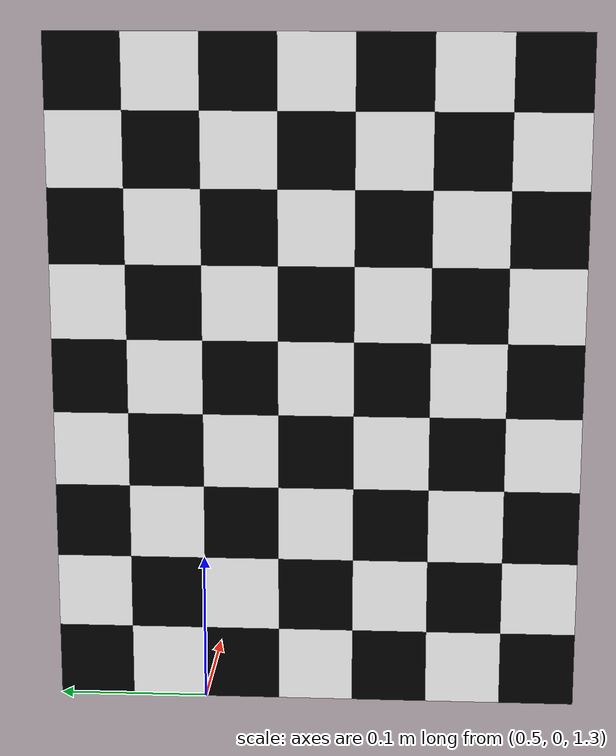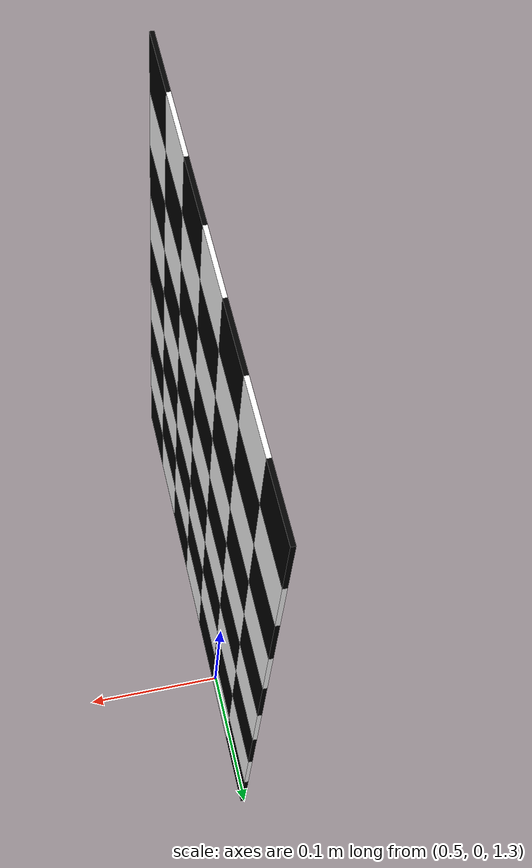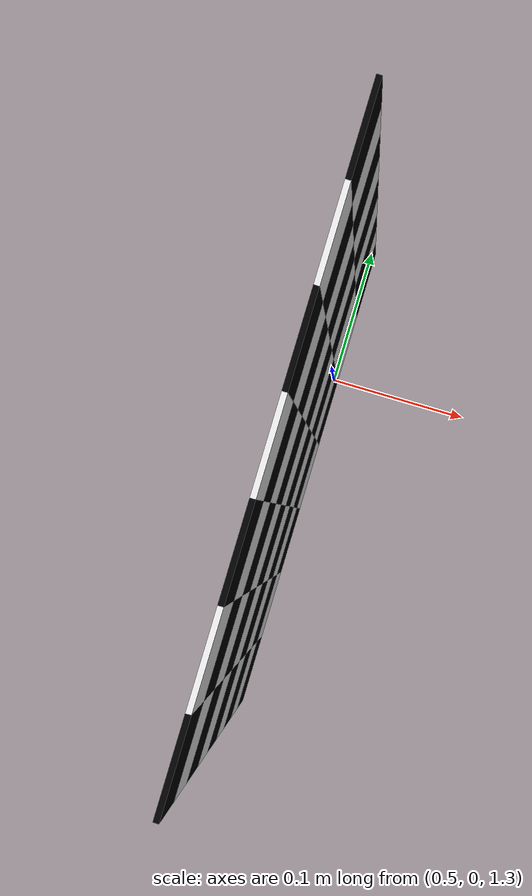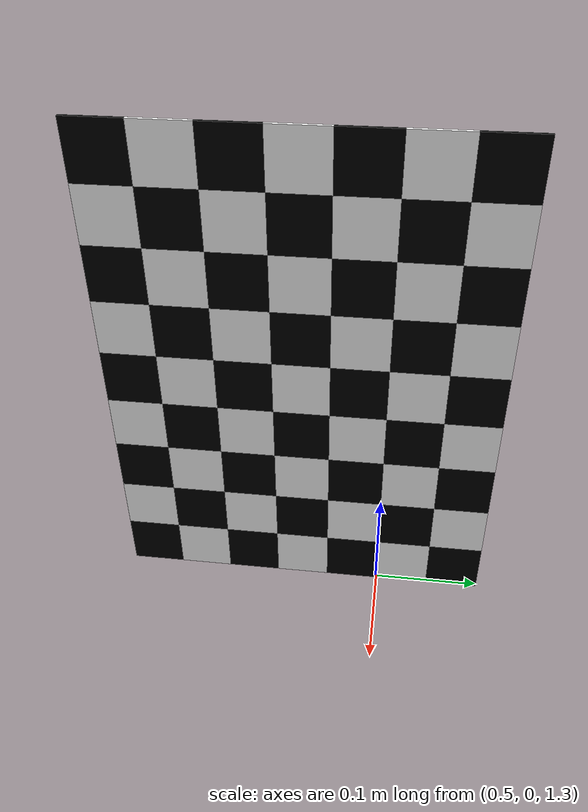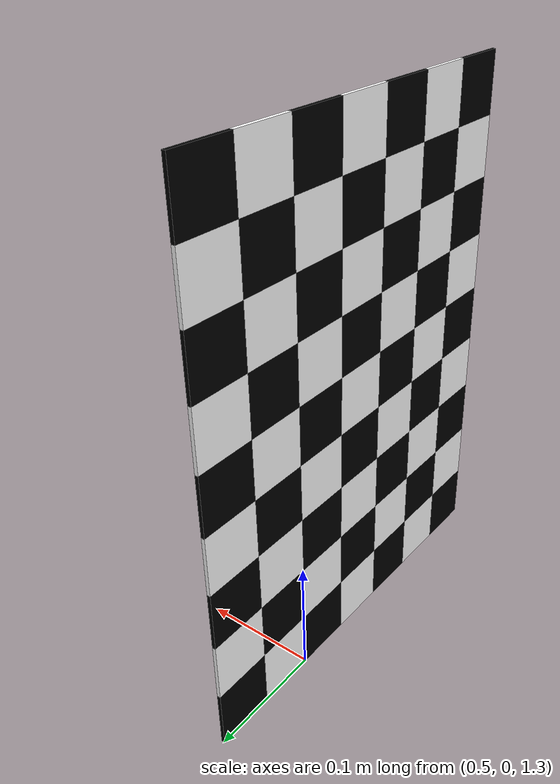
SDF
<sdf version="1.6">
 <world name="default">
  <gravity>0 0 0</gravity>
  <light name="sun" type="directional">
   <pose>0 0 10 0 -0 0</pose>
   <diffuse>0.8 0.8 0.8 1</diffuse>
   <specular>0.2 0.2 0.2 1</specular>
   <attenuation>
    <range>1000</range>
    <constant>0.9</constant>
    <linear>0.01</linear>
    <quadratic>0.001</quadratic>
   </attenuation>
   <direction>-0.5 0.1 -0.9</direction>
  </light>
  <model name="ground_plane">
   <static>1</static>
   <link name="link">
    <collision name="collision">
     <geometry><plane><normal>0 0 1</normal><size>100 100</size></plane></geometry>
     <surface><friction><ode><mu>100</mu><mu2>50</mu2></ode></friction></surface>
    </collision>
    <visual name="visual">
     <cast_shadows>0</cast_shadows>
     <geometry><plane><normal>0 0 1</normal><size>100 100</size></plane></geometry>
     <material>
      <script><uri>file://media/materials/scripts/gazebo.material</uri><name>Gazebo/Grey</name></script>
     </material>
    </visual>
   </link>
  </model>
  <gravity>0 0 -9.8</gravity>
  <magnetic_field>6e-06 2.3e-05 -4.2e-05</magnetic_field>
  <atmosphere type="adiabatic"/>
  <physics name="default_physics" default="0" type="ode">
   <max_step_size>0.001</max_step_size>
   <real_time_factor>1</real_time_factor>
   <real_time_update_rate>1000</real_time_update_rate>
  </physics>
  <scene><ambient>0.4 0.4 0.4 1</ambient><background>0.7 0.7 0.7 1</background><shadows>1</shadows></scene>
  <spherical_coordinates>
   <surface_model>EARTH_WGS84</surface_model>
   <latitude_deg>0</latitude_deg>
   <longitude_deg>0</longitude_deg>
   <elevation>0</elevation>
   <heading_deg>0</heading_deg>
  </spherical_coordinates>
  <light name="light_back" type="point">
   <pose>0 0 10 0 -0 0</pose>
   <diffuse>0.5 0.5 0.5 1</diffuse>
   <specular>0.1 0.1 0.1 1</specular>
   <attenuation>
    <range>20</range>
    <constant>0.5</constant>
    <linear>0.01</linear>
    <quadratic>0.001</quadratic>
   </attenuation>
   <cast_shadows>0</cast_shadows>
   <direction>0 0 -1</direction>
  </light>
  <include><pose>0.5 0 1.5 0 1.57 0</pose><uri>file://media/models/chessboard</uri></include>
 </world>
</sdf>

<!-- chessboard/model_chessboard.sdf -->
<sdf version="1.4">
    <model name='chessboard'>
        <static>true</static>
        <pose>1 0 1.4 1.57 0 1.57</pose>
        <link name='apriltag_body'>
            <visual name='block0'>
                <pose>-0.225 -0.225 0.001 0 0 0</pose>
                <geometry>
                    <box>
                        <size>0.05 0.05 0.003</size>
                    </box>
                </geometry>
                <material>
                    <ambient>0 0 0 1</ambient>
                    <diffuse>0 0 0 1</diffuse>
                    <specular>0 0 0 1</specular>
                </material>
            </visual>
            <visual name='block1'>
                <pose>-0.225 -0.175 0.001 0 0 0</pose>
                <geometry>
                    <box>
                        <size>0.05 0.05 0.003</size>
                    </box>
                </geometry>
                <material>
                    <ambient>1 1 1 1</ambient>
                    <diffuse>1 1 1 1</diffuse>
                    <specular>1 1 1 1</specular>
                </material>
            </visual>
            <visual name='block2'>
                <pose>-0.225 -0.125 0.001 0 0 0</pose>
                <geometry>
                    <box>
                        <size>0.05 0.05 0.003</size>
                    </box>
                </geometry>
                <material>
                    <ambient>0 0 0 1</ambient>
                    <diffuse>0 0 0 1</diffuse>
                    <specular>0 0 0 1</specular>
                </material>
            </visual>
            <visual name='block3'>
                <pose>-0.225 -0.075 0.001 0 0 0</pose>
                <geometry>
                    <box>
                        <size>0.05 0.05 0.003</size>
                    </box>
                </geometry>
                <material>
                    <ambient>1 1 1 1</ambient>
                    <diffuse>1 1 1 1</diffuse>
                    <specular>1 1 1 1</specular>
                </material>
            </visual>
            <visual name='block4'>
                <pose>-0.225 -0.025 0.001 0 0 0</pose>
                <geometry>
                    <box>
                        <size>0.05 0.05 0.003</size>
                    </box>
                </geometry>
                <material>
                    <ambient>0 0 0 1</ambient>
                    <diffuse>0 0 0 1</diffuse>
                    <specular>0 0 0 1</specular>
                </material>
            </visual>
            <visual name='block5'>
                <pose>-0.225 0.025 0.001 0 0 0</pose>
                <geometry>
                    <box>
                        <size>0.05 0.05 0.003</size>
                    </box>
                </geometry>
                <material>
                    <ambient>1 1 1 1</ambient>
                    <diffuse>1 1 1 1</diffuse>
                    <specular>1 1 1 1</specular>
                </material>
            </visual>
            <visual name='block6'>
                <pose>-0.225 0.075 0.001 0 0 0</pose>
                <geometry>
                    <box>
                        <size>0.05 0.05 0.003</size>
                    </box>
                </geometry>
                <material>
                    <ambient>0 0 0 1</ambient>
                    <diffuse>0 0 0 1</diffuse>
                    <specular>0 0 0 1</specular>
                </material>
            </visual>
            <visual name='block9'>
                <pose>-0.175 -0.225 0.001 0 0 0</pose>
                <geometry>
                    <box>
                        <size>0.05 0.05 0.003</size>
                    </box>
                </geometry>
                <material>
                    <ambient>1 1 1 1</ambient>
                    <diffuse>1 1 1 1</diffuse>
                    <specular>1 1 1 1</specular>
                </material>
            </visual>
            <visual name='block10'>
                <pose>-0.175 -0.175 0.001 0 0 0</pose>
                <geometry>
                    <box>
                        <size>0.05 0.05 0.003</size>
                    </box>
                </geometry>
                <material>
                    <ambient>0 0 0 1</ambient>
                    <diffuse>0 0 0 1</diffuse>
                    <specular>0 0 0 1</specular>
                </material>
            </visual>
            <visual name='block11'>
                <pose>-0.175 -0.125 0.001 0 0 0</pose>
                <geometry>
                    <box>
                        <size>0.05 0.05 0.003</size>
                    </box>
                </geometry>
                <material>
                    <ambient>1 1 1 1</ambient>
                    <diffuse>1 1 1 1</diffuse>
                    <specular>1 1 1 1</specular>
                </material>
            </visual>
            <visual name='block12'>
                <pose>-0.175 -0.075 0.001 0 0 0</pose>
                <geometry>
                    <box>
                        <size>0.05 0.05 0.003</size>
                    </box>
                </geometry>
                <material>
                    <ambient>0 0 0 1</ambient>
                    <diffuse>0 0 0 1</diffuse>
                    <specular>0 0 0 1</specular>
                </material>
            </visual>
            <visual name='block13'>
                <pose>-0.175 -0.025 0.001 0 0 0</pose>
                <geometry>
                    <box>
                        <size>0.05 0.05 0.003</size>
                    </box>
                </geometry>
                <material>
                    <ambient>1 1 1 1</ambient>
                    <diffuse>1 1 1 1</diffuse>
                    <specular>1 1 1 1</specular>
                </material>
            </visual>
            <visual name='block14'>
                <pose>-0.175 0.025 0.001 0 0 0</pose>
                <geometry>
                    <box>
                        <size>0.05 0.05 0.003</size>
                    </box>
                </geometry>
                <material>
                    <ambient>0 0 0 1</ambient>
                    <diffuse>0 0 0 1</diffuse>
                    <specular>0 0 0 1</specular>
                </material>
            </visual>
            <visual name='block15'>
                <pose>-0.175 0.075 0.001 0 0 0</pose>
                <geometry>
                    <box>
                        <size>0.05 0.05 0.003</size>
                    </box>
                </geometry>
                <material>
                    <ambient>1 1 1 1</ambient>
                    <diffuse>1 1 1 1</diffuse>
                    <specular>1 1 1 1</specular>
                </material>
            </visual>
            <visual name='block18'>
                <pose>-0.125 -0.225 0.001 0 0 0</pose>
                <geometry>
                    <box>
                        <size>0.05 0.05 0.003</size>
                    </box>
                </geometry>
                <material>
                    <ambient>0 0 0 1</ambient>
                    <diffuse>0 0 0 1</diffuse>
                    <specular>0 0 0 1</specular>
                </material>
            </visual>
            <visual name='block19'>
                <pose>-0.125 -0.175 0.001 0 0 0</pose>
                <geometry>
                    <box>
                        <size>0.05 0.05 0.003</size>
                    </box>
                </geometry>
                <material>
                    <ambient>1 1 1 1</ambient>
                    <diffuse>1 1 1 1</diffuse>
                    <specular>1 1 1 1</specular>
                </material>
            </visual>
            <visual name='block20'>
                <pose>-0.125 -0.125 0.001 0 0 0</pose>
                <geometry>
                    <box>
                        <size>0.05 0.05 0.003</size>
                    </box>
                </geometry>
                <material>
                    <ambient>0 0 0 1</ambient>
                    <diffuse>0 0 0 1</diffuse>
                    <specular>0 0 0 1</specular>
                </material>
            </visual>
            <visual name='block21'>
                <pose>-0.125 -0.075 0.001 0 0 0</pose>
                <geometry>
                    <box>
                        <size>0.05 0.05 0.003</size>
                    </box>
                </geometry>
                <material>
                    <ambient>1 1 1 1</ambient>
                    <diffuse>1 1 1 1</diffuse>
                    <specular>1 1 1 1</specular>
                </material>
            </visual>
            <visual name='block22'>
                <pose>-0.125 -0.025 0.001 0 0 0</pose>
                <geometry>
                    <box>
                        <size>0.05 0.05 0.003</size>
                    </box>
                </geometry>
                <material>
                    <ambient>0 0 0 1</ambient>
                    <diffuse>0 0 0 1</diffuse>
                    <specular>0 0 0 1</specular>
                </material>
            </visual>
            <visual name='block23'>
                <pose>-0.125 0.025 0.001 0 0 0</pose>
                <geometry>
                    <box>
                        <size>0.05 0.05 0.003</size>
                    </box>
                </geometry>
                <material>
                    <ambient>1 1 1 1</ambient>
                    <diffuse>1 1 1 1</diffuse>
                    <specular>1 1 1 1</specular>
                </material>
            </visual>
            <visual name='block24'>
                <pose>-0.125 0.075 0.001 0 0 0</pose>
                <geometry>
                    <box>
                        <size>0.05 0.05 0.003</size>
                    </box>
                </geometry>
                <material>
                    <ambient>0 0 0 1</ambient>
                    <diffuse>0 0 0 1</diffuse>
                    <specular>0 0 0 1</specular>
                </material>
            </visual>
            <visual name='block27'>
                <pose>-0.075 -0.225 0.001 0 0 0</pose>
                <geometry>
                    <box>
                        <size>0.05 0.05 0.003</size>
                    </box>
                </geometry>
                <material>
                    <ambient>1 1 1 1</ambient>
                    <diffuse>1 1 1 1</diffuse>
                    <specular>1 1 1 1</specular>
                </material>
            </visual>
            <visual name='block28'>
                <pose>-0.075 -0.175 0.001 0 0 0</pose>
                <geometry>
                    <box>
                        <size>0.05 0.05 0.003</size>
                    </box>
                </geometry>
                <material>
                    <ambient>0 0 0 1</ambient>
                    <diffuse>0 0 0 1</diffuse>
                    <specular>0 0 0 1</specular>
                </material>
            </visual>
            <visual name='block29'>
                <pose>-0.075 -0.125 0.001 0 0 0</pose>
                <geometry>
                    <box>
                        <size>0.05 0.05 0.003</size>
                    </box>
                </geometry>
                <material>
                    <ambient>1 1 1 1</ambient>
                    <diffuse>1 1 1 1</diffuse>
                    <specular>1 1 1 1</specular>
                </material>
            </visual>
            <visual name='block30'>
                <pose>-0.075 -0.075 0.001 0 0 0</pose>
                <geometry>
                    <box>
                        <size>0.05 0.05 0.003</size>
                    </box>
                </geometry>
                <material>
                    <ambient>0 0 0 1</ambient>
                    <diffuse>0 0 0 1</diffuse>
                    <specular>0 0 0 1</specular>
                </material>
            </visual>
            <visual name='block31'>
                <pose>-0.075 -0.025 0.001 0 0 0</pose>
                <geometry>
                    <box>
                        <size>0.05 0.05 0.003</size>
                    </box>
                </geometry>
                <material>
                    <ambient>1 1 1 1</ambient>
                    <diffuse>1 1 1 1</diffuse>
                    <specular>1 1 1 1</specular>
                </material>
            </visual>
            <visual name='block32'>
                <pose>-0.075 0.025 0.001 0 0 0</pose>
                <geometry>
                    <box>
                        <size>0.05 0.05 0.003</size>
                    </box>
                </geometry>
                <material>
                    <ambient>0 0 0 1</ambient>
                    <diffuse>0 0 0 1</diffuse>
                    <specular>0 0 0 1</specular>
                </material>
            </visual>
            <visual name='block33'>
                <pose>-0.075 0.075 0.001 0 0 0</pose>
                <geometry>
                    <box>
                        <size>0.05 0.05 0.003</size>
                    </box>
                </geometry>
                <material>
                    <ambient>1 1 1 1</ambient>
                    <diffuse>1 1 1 1</diffuse>
                    <specular>1 1 1 1</specular>
                </material>
            </visual>
            <visual name='block36'>
                <pose>-0.025 -0.225 0.001 0 0 0</pose>
                <geometry>
                    <box>
                        <size>0.05 0.05 0.003</size>
                    </box>
                </geometry>
                <material>
                    <ambient>0 0 0 1</ambient>
                    <diffuse>0 0 0 1</diffuse>
                    <specular>0 0 0 1</specular>
                </material>
            </visual>
            <visual name='block37'>
                <pose>-0.025 -0.175 0.001 0 0 0</pose>
                <geometry>
                    <box>
                        <size>0.05 0.05 0.003</size>
                    </box>
                </geometry>
                <material>
                    <ambient>1 1 1 1</ambient>
                    <diffuse>1 1 1 1</diffuse>
                    <specular>1 1 1 1</specular>
                </material>
            </visual>
            <visual name='block38'>
                <pose>-0.025 -0.125 0.001 0 0 0</pose>
                <geometry>
                    <box>
                        <size>0.05 0.05 0.003</size>
                    </box>
                </geometry>
                <material>
                    <ambient>0 0 0 1</ambient>
                    <diffuse>0 0 0 1</diffuse>
                    <specular>0 0 0 1</specular>
                </material>
            </visual>
            <visual name='block39'>
                <pose>-0.025 -0.075 0.001 0 0 0</pose>
                <geometry>
                    <box>
                        <size>0.05 0.05 0.003</size>
                    </box>
                </geometry>
                <material>
                    <ambient>1 1 1 1</ambient>
                    <diffuse>1 1 1 1</diffuse>
                    <specular>1 1 1 1</specular>
                </material>
            </visual>
            <visual name='block40'>
                <pose>-0.025 -0.025 0.001 0 0 0</pose>
                <geometry>
                    <box>
                        <size>0.05 0.05 0.003</size>
                    </box>
                </geometry>
                <material>
                    <ambient>0 0 0 1</ambient>
                    <diffuse>0 0 0 1</diffuse>
                    <specular>0 0 0 1</specular>
                </material>
            </visual>
            <visual name='block41'>
                <pose>-0.025 0.025 0.001 0 0 0</pose>
                <geometry>
                    <box>
                        <size>0.05 0.05 0.003</size>
                    </box>
                </geometry>
                <material>
                    <ambient>1 1 1 1</ambient>
                    <diffuse>1 1 1 1</diffuse>
                    <specular>1 1 1 1</specular>
                </material>
            </visual>
            <visual name='block42'>
                <pose>-0.025 0.075 0.001 0 0 0</pose>
                <geometry>
                    <box>
                        <size>0.05 0.05 0.003</size>
                    </box>
                </geometry>
                <material>
                    <ambient>0 0 0 1</ambient>
                    <diffuse>0 0 0 1</diffuse>
                    <specular>0 0 0 1</specular>
                </material>
            </visual>
            <visual name='block45'>
                <pose>0.025 -0.225 0.001 0 0 0</pose>
                <geometry>
                    <box>
                        <size>0.05 0.05 0.003</size>
                    </box>
                </geometry>
                <material>
                    <ambient>1 1 1 1</ambient>
                    <diffuse>1 1 1 1</diffuse>
                    <specular>1 1 1 1</specular>
                </material>
            </visual>
            <visual name='block46'>
                <pose>0.025 -0.175 0.001 0 0 0</pose>
                <geometry>
                    <box>
                        <size>0.05 0.05 0.003</size>
                    </box>
                </geometry>
                <material>
                    <ambient>0 0 0 1</ambient>
                    <diffuse>0 0 0 1</diffuse>
                    <specular>0 0 0 1</specular>
                </material>
            </visual>
            <visual name='block47'>
                <pose>0.025 -0.125 0.001 0 0 0</pose>
                <geometry>
                    <box>
                        <size>0.05 0.05 0.003</size>
                    </box>
                </geometry>
                <material>
                    <ambient>1 1 1 1</ambient>
                    <diffuse>1 1 1 1</diffuse>
                    <specular>1 1 1 1</specular>
                </material>
            </visual>
            <visual name='block48'>
                <pose>0.025 -0.075 0.001 0 0 0</pose>
                <geometry>
                    <box>
                        <size>0.05 0.05 0.003</size>
                    </box>
                </geometry>
                <material>
                    <ambient>0 0 0 1</ambient>
                    <diffuse>0 0 0 1</diffuse>
                    <specular>0 0 0 1</specular>
                </material>
            </visual>
            <visual name='block49'>
                <pose>0.025 -0.025 0.001 0 0 0</pose>
                <geometry>
                    <box>
                        <size>0.05 0.05 0.003</size>
                    </box>
                </geometry>
                <material>
                    <ambient>1 1 1 1</ambient>
                    <diffuse>1 1 1 1</diffuse>
                    <specular>1 1 1 1</specular>
                </material>
            </visual>
            <visual name='block50'>
                <pose>0.025 0.025 0.001 0 0 0</pose>
                <geometry>
                    <box>
                        <size>0.05 0.05 0.003</size>
                    </box>
                </geometry>
                <material>
                    <ambient>0 0 0 1</ambient>
                    <diffuse>0 0 0 1</diffuse>
                    <specular>0 0 0 1</specular>
                </material>
            </visual>
            <visual name='block51'>
                <pose>0.025 0.075 0.001 0 0 0</pose>
                <geometry>
                    <box>
                        <size>0.05 0.05 0.003</size>
                    </box>
                </geometry>
                <material>
                    <ambient>1 1 1 1</ambient>
                    <diffuse>1 1 1 1</diffuse>
                    <specular>1 1 1 1</specular>
                </material>
            </visual>
            <visual name='block54'>
                <pose>0.075 -0.225 0.001 0 0 0</pose>
                <geometry>
                    <box>
                        <size>0.05 0.05 0.003</size>
                    </box>
                </geometry>
                <material>
                    <ambient>0 0 0 1</ambient>
                    <diffuse>0 0 0 1</diffuse>
                    <specular>0 0 0 1</specular>
                </material>
            </visual>
            <visual name='block55'>
                <pose>0.075 -0.175 0.001 0 0 0</pose>
                <geometry>
                    <box>
                        <size>0.05 0.05 0.003</size>
                    </box>
                </geometry>
                <material>
                    <ambient>1 1 1 1</ambient>
                    <diffuse>1 1 1 1</diffuse>
                    <specular>1 1 1 1</specular>
                </material>
            </visual>
            <visual name='block56'>
                <pose>0.075 -0.125 0.001 0 0 0</pose>
                <geometry>
                    <box>
                        <size>0.05 0.05 0.003</size>
                    </box>
                </geometry>
                <material>
                    <ambient>0 0 0 1</ambient>
                    <diffuse>0 0 0 1</diffuse>
                    <specular>0 0 0 1</specular>
                </material>
            </visual>
            <visual name='block57'>
                <pose>0.075 -0.075 0.001 0 0 0</pose>
                <geometry>
                    <box>
                        <size>0.05 0.05 0.003</size>
                    </box>
                </geometry>
                <material>
                    <ambient>1 1 1 1</ambient>
                    <diffuse>1 1 1 1</diffuse>
                    <specular>1 1 1 1</specular>
                </material>
            </visual>
            <visual name='block58'>
                <pose>0.075 -0.025 0.001 0 0 0</pose>
                <geometry>
                    <box>
                        <size>0.05 0.05 0.003</size>
                    </box>
                </geometry>
                <material>
                    <ambient>0 0 0 1</ambient>
                    <diffuse>0 0 0 1</diffuse>
                    <specular>0 0 0 1</specular>
                </material>
            </visual>
            <visual name='block59'>
                <pose>0.075 0.025 0.001 0 0 0</pose>
                <geometry>
                    <box>
                        <size>0.05 0.05 0.003</size>
                    </box>
                </geometry>
                <material>
                    <ambient>1 1 1 1</ambient>
                    <diffuse>1 1 1 1</diffuse>
                    <specular>1 1 1 1</specular>
                </material>
            </visual>
            <visual name='block60'>
                <pose>0.075 0.075 0.001 0 0 0</pose>
                <geometry>
                    <box>
                        <size>0.05 0.05 0.003</size>
                    </box>
                </geometry>
                <material>
                    <ambient>0 0 0 1</ambient>
                    <diffuse>0 0 0 1</diffuse>
                    <specular>0 0 0 1</specular>
                </material>
            </visual>
            <visual name='block63'>
                <pose>0.125 -0.225 0.001 0 0 0</pose>
                <geometry>
                    <box>
                        <size>0.05 0.05 0.003</size>
                    </box>
                </geometry>
                <material>
                    <ambient>1 1 1 1</ambient>
                    <diffuse>1 1 1 1</diffuse>
                    <specular>1 1 1 1</specular>
                </material>
            </visual>
            <visual name='block64'>
                <pose>0.125 -0.175 0.001 0 0 0</pose>
                <geometry>
                    <box>
                        <size>0.05 0.05 0.003</size>
                    </box>
                </geometry>
                <material>
                    <ambient>0 0 0 1</ambient>
                    <diffuse>0 0 0 1</diffuse>
                    <specular>0 0 0 1</specular>
                </material>
            </visual>
            <visual name='block65'>
                <pose>0.125 -0.125 0.001 0 0 0</pose>
                <geometry>
                    <box>
                        <size>0.05 0.05 0.003</size>
                    </box>
                </geometry>
                <material>
                    <ambient>1 1 1 1</ambient>
                    <diffuse>1 1 1 1</diffuse>
                    <specular>1 1 1 1</specular>
                </material>
            </visual>
            <visual name='block66'>
                <pose>0.125 -0.075 0.001 0 0 0</pose>
                <geometry>
                    <box>
                        <size>0.05 0.05 0.003</size>
                    </box>
                </geometry>
                <material>
                    <ambient>0 0 0 1</ambient>
                    <diffuse>0 0 0 1</diffuse>
                    <specular>0 0 0 1</specular>
                </material>
            </visual>
            <visual name='block67'>
                <pose>0.125 -0.025 0.001 0 0 0</pose>
                <geometry>
                    <box>
                        <size>0.05 0.05 0.003</size>
                    </box>
                </geometry>
                <material>
                    <ambient>1 1 1 1</ambient>
                    <diffuse>1 1 1 1</diffuse>
                    <specular>1 1 1 1</specular>
                </material>
            </visual>
            <visual name='block68'>
                <pose>0.125 0.025 0.001 0 0 0</pose>
                <geometry>
                    <box>
                        <size>0.05 0.05 0.003</size>
                    </box>
                </geometry>
                <material>
                    <ambient>0 0 0 1</ambient>
                    <diffuse>0 0 0 1</diffuse>
                    <specular>0 0 0 1</specular>
                </material>
            </visual>
            <visual name='block69'>
                <pose>0.125 0.075 0.001 0 0 0</pose>
                <geometry>
                    <box>
                        <size>0.05 0.05 0.003</size>
                    </box>
                </geometry>
                <material>
                    <ambient>1 1 1 1</ambient>
                    <diffuse>1 1 1 1</diffuse>
                    <specular>1 1 1 1</specular>
                </material>
            </visual>
            <visual name='block72'>
                <pose>0.175 -0.225 0.001 0 0 0</pose>
                <geometry>
                    <box>
                        <size>0.05 0.05 0.003</size>
                    </box>
                </geometry>
                <material>
                    <ambient>0 0 0 1</ambient>
                    <diffuse>0 0 0 1</diffuse>
                    <specular>0 0 0 1</specular>
                </material>
            </visual>
            <visual name='block73'>
                <pose>0.175 -0.175 0.001 0 0 0</pose>
                <geometry>
                    <box>
                        <size>0.05 0.05 0.003</size>
                    </box>
                </geometry>
                <material>
                    <ambient>1 1 1 1</ambient>
                    <diffuse>1 1 1 1</diffuse>
                    <specular>1 1 1 1</specular>
                </material>
            </visual>
            <visual name='block74'>
                <pose>0.175 -0.125 0.001 0 0 0</pose>
                <geometry>
                    <box>
                        <size>0.05 0.05 0.003</size>
                    </box>
                </geometry>
                <material>
                    <ambient>0 0 0 1</ambient>
                    <diffuse>0 0 0 1</diffuse>
                    <specular>0 0 0 1</specular>
                </material>
            </visual>
            <visual name='block75'>
                <pose>0.175 -0.075 0.001 0 0 0</pose>
                <geometry>
                    <box>
                        <size>0.05 0.05 0.003</size>
                    </box>
                </geometry>
                <material>
                    <ambient>1 1 1 1</ambient>
                    <diffuse>1 1 1 1</diffuse>
                    <specular>1 1 1 1</specular>
                </material>
            </visual>
            <visual name='block76'>
                <pose>0.175 -0.025 0.001 0 0 0</pose>
                <geometry>
                    <box>
                        <size>0.05 0.05 0.003</size>
                    </box>
                </geometry>
                <material>
                    <ambient>0 0 0 1</ambient>
                    <diffuse>0 0 0 1</diffuse>
                    <specular>0 0 0 1</specular>
                </material>
            </visual>
            <visual name='block77'>
                <pose>0.175 0.025 0.001 0 0 0</pose>
                <geometry>
                    <box>
                        <size>0.05 0.05 0.003</size>
                    </box>
                </geometry>
                <material>
                    <ambient>1 1 1 1</ambient>
                    <diffuse>1 1 1 1</diffuse>
                    <specular>1 1 1 1</specular>
                </material>
            </visual>
            <visual name='block78'>
                <pose>0.175 0.075 0.001 0 0 0</pose>
                <geometry>
                    <box>
                        <size>0.05 0.05 0.003</size>
                    </box>
                </geometry>
                <material>
                    <ambient>0 0 0 1</ambient>
                    <diffuse>0 0 0 1</diffuse>
                    <specular>0 0 0 1</specular>
                </material>
            </visual>
        </link>
    </model>
</sdf>
